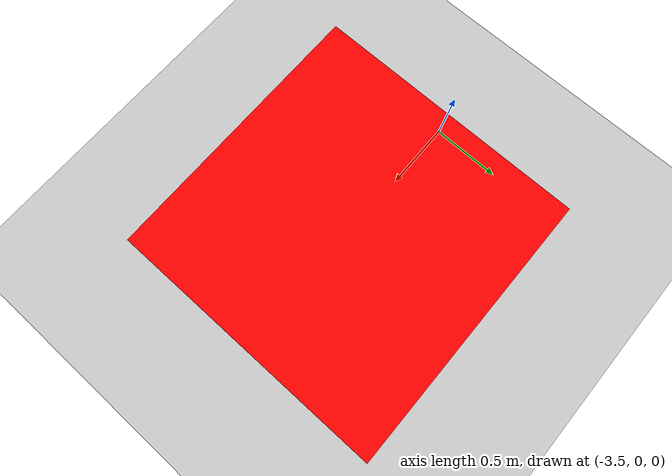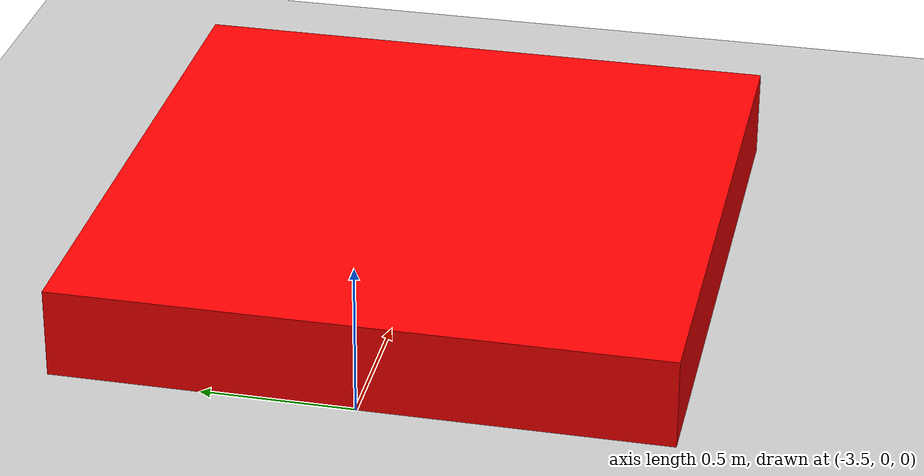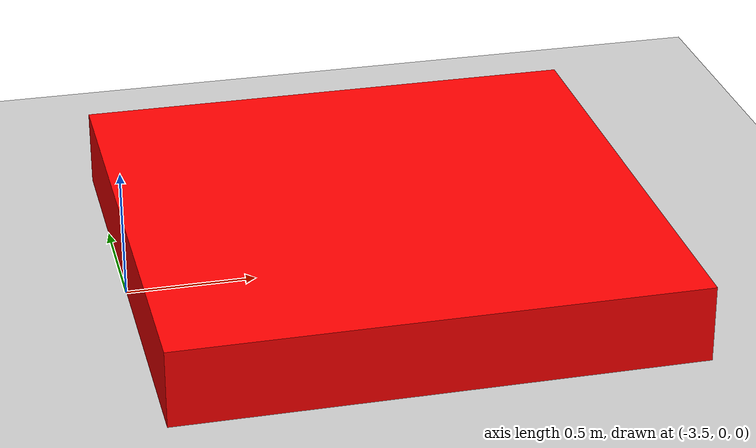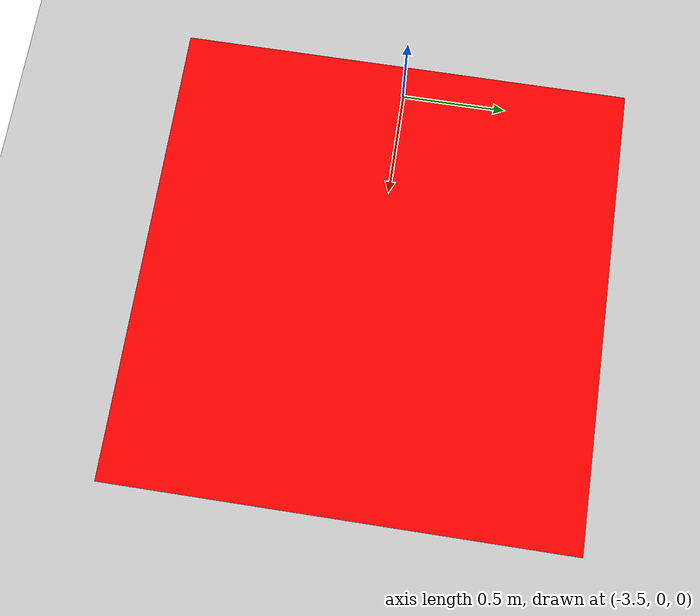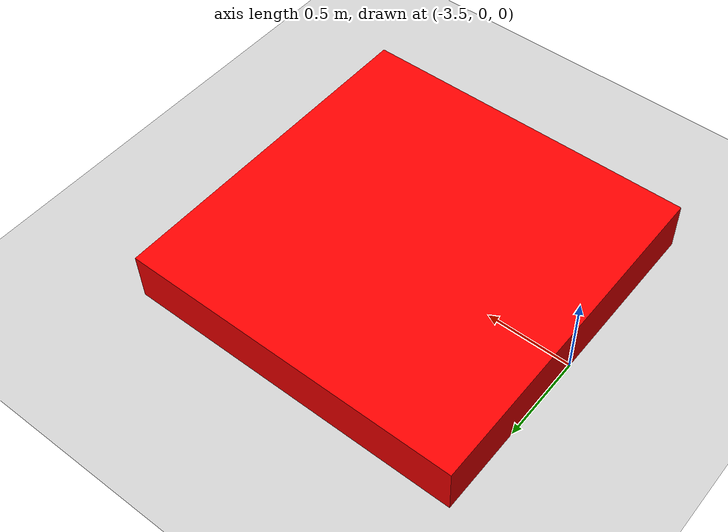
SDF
<?xml version="1.0" ?>
<sdf version="1.9">
  <world name="block_world">
    <plugin filename="gz-sim-physics-system" name="gz::sim::systems::Physics"/>
    <plugin filename="gz-sim-user-commands-system" name="gz::sim::systems::UserCommands"/>
    <plugin filename="gz-sim-scene-broadcaster-system" name="gz::sim::systems::SceneBroadcaster"/>
    <plugin filename="gz-sim-sensors-system" name="gz::sim::systems::Sensors"/>
    <model name="ground_plane">
      <static>true</static>
      <link name="link">
        <collision name="collision">
          <geometry><plane><normal>0 0 1</normal><size>100 100</size></plane></geometry>
        </collision>
        <visual name="visual">
          <geometry><plane><normal>0 0 1</normal><size>100 100</size></plane></geometry>
        </visual>
      </link>
    </model>

    <model name="prevent_block">
      <static>true</static>
      <pose>-2.5 0.0 0.15 0 0 0</pose> <link name="link">
        <collision name="collision">
          <geometry>
            <box><size>2 2 0.3</size></box> </geometry>
        </collision>
        <visual name="visual">
          <geometry>
            <box><size>2 2 0.3</size></box>
          </geometry>
          <material>
            <ambient>1 0 0 1</ambient> <diffuse>1 0 0 1</diffuse>
          </material>
        </visual>
      </link>
    </model>
  </world>
</sdf>
